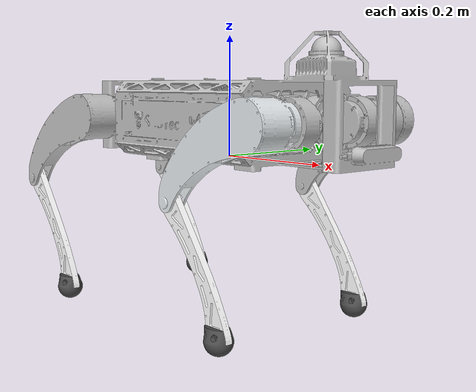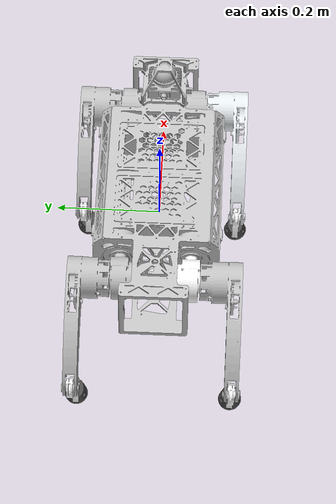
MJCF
<mujoco model="Legged_Robot">
  <compiler angle="radian"/>

  <asset>
    <mesh name="base_link" file="base_link.STL"/>
    <mesh name="LF_HipA_link" file="LF_HipA_link.STL"/>
    <mesh name="LF_HipF_link" file="LF_HipF_link.STL"/>
    <mesh name="LF_Knee_link" file="LF_Knee_link.STL"/>
    <mesh name="LF_Foot_link" file="LF_Foot_link.STL"/>
    <mesh name="LR_HipA_link" file="LR_HipA_link.STL"/>
    <mesh name="LR_HipF_link" file="LR_HipF_link.STL"/>
    <mesh name="LR_Knee_link" file="LR_Knee_link.STL"/>
    <mesh name="LR_Foot_link" file="LR_Foot_link.STL"/>
    <mesh name="RF_HipA_link" file="RF_HipA_link.STL"/>
    <mesh name="RF_HipF_link" file="RF_HipF_link.STL"/>
    <mesh name="RF_Knee_link" file="RF_Knee_link.STL"/>
    <mesh name="RF_Foot_link" file="RF_Foot_link.STL"/>
    <mesh name="RR_HipA_link" file="RR_HipA_link.STL"/>
    <mesh name="RR_HipF_link" file="RR_HipF_link.STL"/>
    <mesh name="RR_Knee_link" file="RR_Knee_link.STL"/>
    <mesh name="RR_Foot_link" file="RR_Foot_link.STL"/>
  </asset>

  <worldbody>
    <geom type="mesh" contype="0" conaffinity="0" group="1" density="0" rgba="0.75294 0.75294 0.75294 1" mesh="base_link"/>
    <geom type="mesh" rgba="0.75294 0.75294 0.75294 1" mesh="base_link"/>
    <body name="LF_HipA_link" pos="0.16 0.0674995 0.063" quat="0.5 0.5 0.5 0.5">
      <inertial pos="0.002621 5.2e-05 0.046852" quat="0.999998 -0.00118711 0.00141761 0.000809669" mass="0.452382" diaginertia="0.000558671 0.000347032 0.000308949"/>
      <joint name="LF_HipA_joint" pos="0 0 0" axis="0 0 1" range="-3.14 3.14" actuatorfrcrange="-3 3"/>
      <geom type="mesh" contype="0" conaffinity="0" group="1" density="0" rgba="0.752941 0.752941 0.752941 1" mesh="LF_HipA_link"/>
      <geom type="mesh" rgba="0.752941 0.752941 0.752941 1" mesh="LF_HipA_link"/>
      <body name="LF_HipF_link" pos="0.018001 0 0.048001" quat="0.707105 0 0.707108 0">
        <inertial pos="0.033261 -0.016881 0.050217" quat="0.152033 0.623312 -0.211737 0.737248" mass="0.779164" diaginertia="0.00440094 0.00415049 0.000644813"/>
        <joint name="LF_HipF_joint" pos="0 0 0" axis="0 0 1" range="-3.14 3.14" actuatorfrcrange="-3 3"/>
        <geom type="mesh" contype="0" conaffinity="0" group="1" density="0" rgba="0.752941 0.752941 0.752941 1" mesh="LF_HipF_link"/>
        <geom type="mesh" rgba="0.752941 0.752941 0.752941 1" mesh="LF_HipF_link"/>
        <body name="LF_Knee_link" pos="0.170743 -0.122257 0.05">
          <inertial pos="-0.027046 -0.0647039 -0.0387901" quat="0.917237 0.259098 -0.21092 -0.216929" mass="0.160086" diaginertia="0.00283061 0.00228514 0.000579316"/>
          <joint name="LF_Knee_joint" pos="0 0 0" axis="0 0 1" range="-3.14 3.14" actuatorfrcrange="-3 3"/>
          <geom type="mesh" contype="0" conaffinity="0" group="1" density="0" rgba="1 1 1 1" mesh="LF_Knee_link"/>
          <geom type="mesh" rgba="1 1 1 1" mesh="LF_Knee_link"/>
          <geom pos="-0.110125 -0.190743 0.0165" quat="0 0 0.707107 0.707107" type="mesh" contype="0" conaffinity="0" group="1" density="0" rgba="0.298039 0.298039 0.298039 1" mesh="LF_Foot_link"/>
          <geom pos="-0.110125 -0.190743 0.0165" quat="0 0 0.707107 0.707107" type="mesh" rgba="0.298039 0.298039 0.298039 1" mesh="LF_Foot_link"/>
        </body>
      </body>
    </body>
    <body name="LR_HipA_link" pos="-0.16 0.0674995 0.063" quat="0.5 0.5 -0.5 -0.5">
      <inertial pos="-0.002621 -5.2e-05 0.046852" quat="0.999998 0.00118711 -0.00141761 0.000809669" mass="0.452382" diaginertia="0.000558671 0.000347032 0.000308949"/>
      <joint name="LR_HipA_joint" pos="0 0 0" axis="0 0 1" range="-3.14 3.14" actuatorfrcrange="-3 3"/>
      <geom type="mesh" contype="0" conaffinity="0" group="1" density="0" rgba="0.752941 0.752941 0.752941 1" mesh="LR_HipA_link"/>
      <geom type="mesh" rgba="0.752941 0.752941 0.752941 1" mesh="LR_HipA_link"/>
      <body name="LR_HipF_link" pos="-0.018001 0 0.048001" quat="0.707105 0 -0.707108 0">
        <inertial pos="0.03326 -0.016881 0.050217" quat="0.152033 0.623312 -0.211737 0.737248" mass="0.779164" diaginertia="0.00440094 0.00415049 0.000644813"/>
        <joint name="LR_HipF_joint" pos="0 0 0" axis="0 0 1" range="-3.14 3.14" actuatorfrcrange="-3 3"/>
        <geom type="mesh" contype="0" conaffinity="0" group="1" density="0" rgba="0.752941 0.752941 0.752941 1" mesh="LR_HipF_link"/>
        <geom type="mesh" rgba="0.752941 0.752941 0.752941 1" mesh="LR_HipF_link"/>
        <body name="LR_Knee_link" pos="0.170742 -0.122257 0.05">
          <inertial pos="-0.027046 -0.0647039 -0.0387901" quat="0.917237 0.259098 -0.21092 -0.216929" mass="0.160086" diaginertia="0.00283061 0.00228514 0.000579316"/>
          <joint name="LR_Knee_joint" pos="0 0 0" axis="0 0 1" range="-3.14 3.14" actuatorfrcrange="-3 3"/>
          <geom type="mesh" contype="0" conaffinity="0" group="1" density="0" rgba="1 1 1 1" mesh="LR_Knee_link"/>
          <geom type="mesh" rgba="1 1 1 1" mesh="LR_Knee_link"/>
          <geom pos="-0.110125 -0.190743 0.0165" quat="0 0 -0.707107 -0.707107" type="mesh" contype="0" conaffinity="0" group="1" density="0" rgba="0.298039 0.298039 0.298039 1" mesh="LR_Foot_link"/>
          <geom pos="-0.110125 -0.190743 0.0165" quat="0 0 -0.707107 -0.707107" type="mesh" rgba="0.298039 0.298039 0.298039 1" mesh="LR_Foot_link"/>
        </body>
      </body>
    </body>
    <body name="RF_HipA_link" pos="0.16 -0.0674995 0.063" quat="0.5 0.5 0.5 0.5">
      <inertial pos="-0.002621 -5.2e-05 0.046852" quat="0.999998 0.00118711 -0.00141761 0.000809669" mass="0.452382" diaginertia="0.000558671 0.000347032 0.000308949"/>
      <joint name="RF_HipA_joint" pos="0 0 0" axis="0 0 1" range="-3.14 3.14" actuatorfrcrange="-3 3"/>
      <geom type="mesh" contype="0" conaffinity="0" group="1" density="0" rgba="0.752941 0.752941 0.752941 1" mesh="RF_HipA_link"/>
      <geom type="mesh" rgba="0.752941 0.752941 0.752941 1" mesh="RF_HipA_link"/>
      <body name="RF_HipF_link" pos="-0.018001 0 0.048001" quat="0.707105 0 -0.707108 0">
        <inertial pos="-0.033247 -0.016939 0.050217" quat="-0.212479 0.737497 0.150761 0.623075" mass="0.779164" diaginertia="0.00440025 0.00414919 0.000645151"/>
        <joint name="RF_HipF_joint" pos="0 0 0" axis="0 0 1" range="-3.14 3.14" actuatorfrcrange="-3 3"/>
        <geom type="mesh" contype="0" conaffinity="0" group="1" density="0" rgba="0.898039 0.917647 0.929412 1" mesh="RF_HipF_link"/>
        <geom type="mesh" rgba="0.898039 0.917647 0.929412 1" mesh="RF_HipF_link"/>
        <body name="RF_Knee_link" pos="-0.17074 -0.12226 0.05">
          <inertial pos="0.0932632 -0.0648073 -0.000488394" quat="0.0486063 0.812403 0.0898099 0.574085" mass="0.160086" diaginertia="0.00177688 0.00108454 0.000706983"/>
          <joint name="RF_Knee_joint" pos="0 0 0" axis="0 0 1" range="-3.14 3.14" actuatorfrcrange="-3 3"/>
          <geom type="mesh" contype="0" conaffinity="0" group="1" density="0" rgba="1 1 1 1" mesh="RF_Knee_link"/>
          <geom type="mesh" rgba="1 1 1 1" mesh="RF_Knee_link"/>
          <geom pos="0.110125 -0.190743 0.0165" quat="0.707107 -0.707107 0 0" type="mesh" contype="0" conaffinity="0" group="1" density="0" rgba="0.298039 0.298039 0.298039 1" mesh="RF_Foot_link"/>
          <geom pos="0.110125 -0.190743 0.0165" quat="0.707107 -0.707107 0 0" type="mesh" rgba="0.298039 0.298039 0.298039 1" mesh="RF_Foot_link"/>
        </body>
      </body>
    </body>
    <body name="RR_HipA_link" pos="-0.16 -0.0674995 0.063" quat="0.5 0.5 -0.5 -0.5">
      <inertial pos="0.002621 5.2e-05 0.046852" quat="0.999998 -0.00118711 0.00141761 0.000809669" mass="0.452382" diaginertia="0.000558671 0.000347032 0.000308949"/>
      <joint name="RR_HipA_joint" pos="0 0 0" axis="0 0 1" range="-3.14 3.14" actuatorfrcrange="-3 3"/>
      <geom type="mesh" contype="0" conaffinity="0" group="1" density="0" rgba="1 1 1 1" mesh="RR_HipA_link"/>
      <geom type="mesh" rgba="1 1 1 1" mesh="RR_HipA_link"/>
      <body name="RR_HipF_link" pos="0.018001 0 0.048001" quat="0.707105 0 0.707108 0">
        <inertial pos="-0.033246 -0.01694 0.050217" quat="-0.212479 0.737497 0.150761 0.623075" mass="0.779164" diaginertia="0.00440025 0.00414919 0.000645151"/>
        <joint name="RR_HipF_joint" pos="0 0 0" axis="0 0 1" range="-3.14 3.14" actuatorfrcrange="-3 3"/>
        <geom type="mesh" contype="0" conaffinity="0" group="1" density="0" rgba="0.752941 0.752941 0.752941 1" mesh="RR_HipF_link"/>
        <geom type="mesh" rgba="0.752941 0.752941 0.752941 1" mesh="RR_HipF_link"/>
        <body name="RR_Knee_link" pos="-0.170742 -0.122257 0.05">
          <inertial pos="0.0932635 -0.0648073 -0.000487141" quat="0.0486081 0.812396 0.0898001 0.574096" mass="0.160086" diaginertia="0.00177687 0.00108454 0.000706979"/>
          <joint name="RR_Knee_joint" pos="0 0 0" axis="0 0 1" range="-3.14 3.14" actuatorfrcrange="-3 3"/>
          <geom type="mesh" contype="0" conaffinity="0" group="1" density="0" rgba="1 1 1 1" mesh="RR_Knee_link"/>
          <geom type="mesh" rgba="1 1 1 1" mesh="RR_Knee_link"/>
          <geom pos="0.11013 -0.19074 0.0165" quat="0.707105 -0.707108 0 0" type="mesh" contype="0" conaffinity="0" group="1" density="0" rgba="0.29804 0.29804 0.29804 1" mesh="RR_Foot_link"/>
          <geom pos="0.11013 -0.19074 0.0165" quat="0.707105 -0.707108 0 0" type="mesh" rgba="0.29804 0.29804 0.29804 1" mesh="RR_Foot_link"/>
        </body>
      </body>
    </body>
  </worldbody>
</mujoco>
